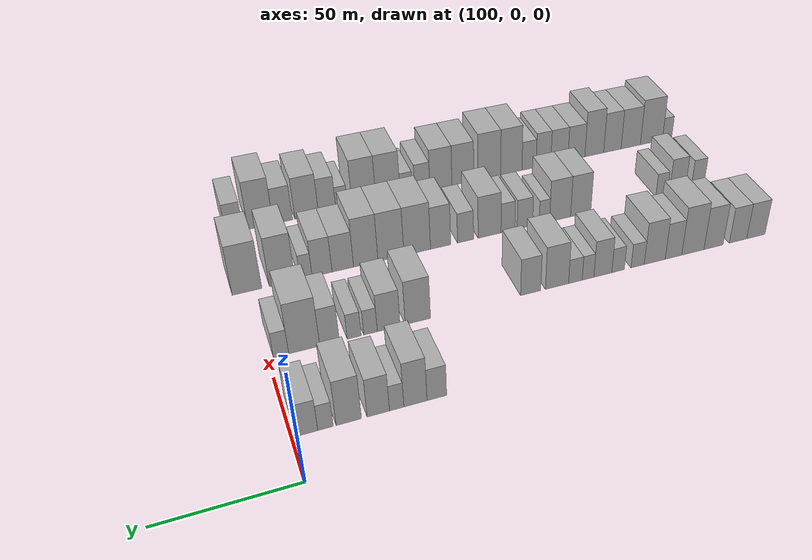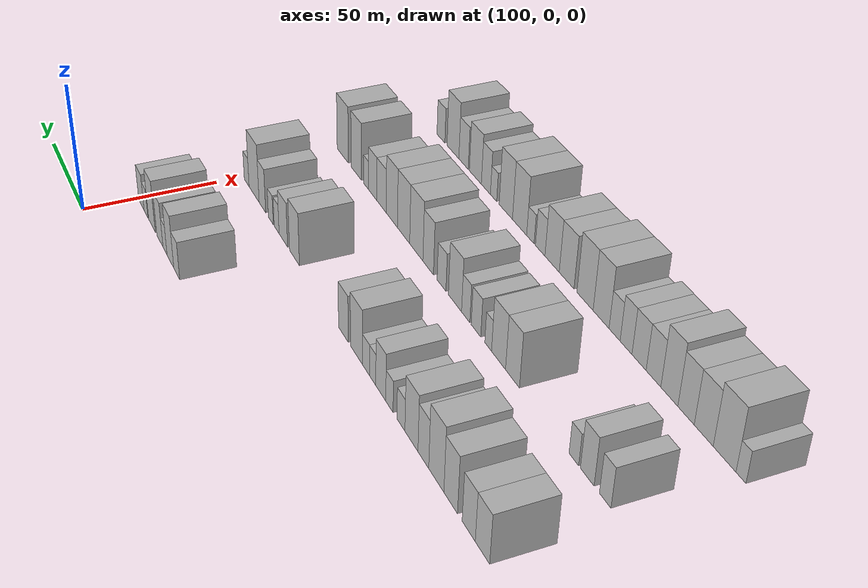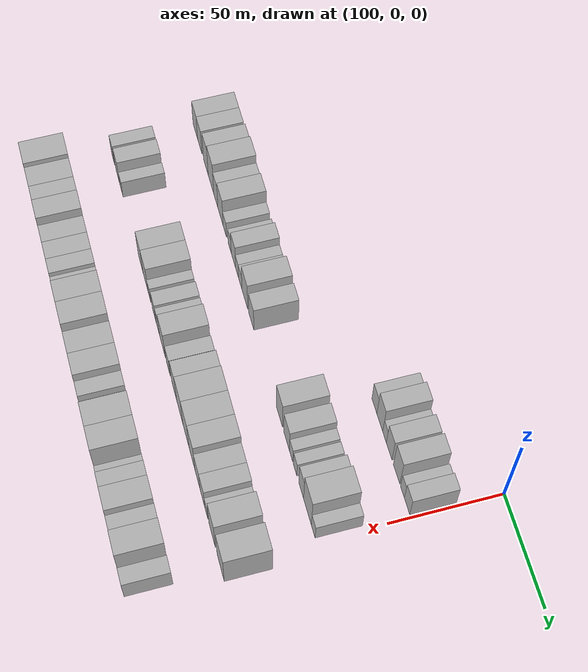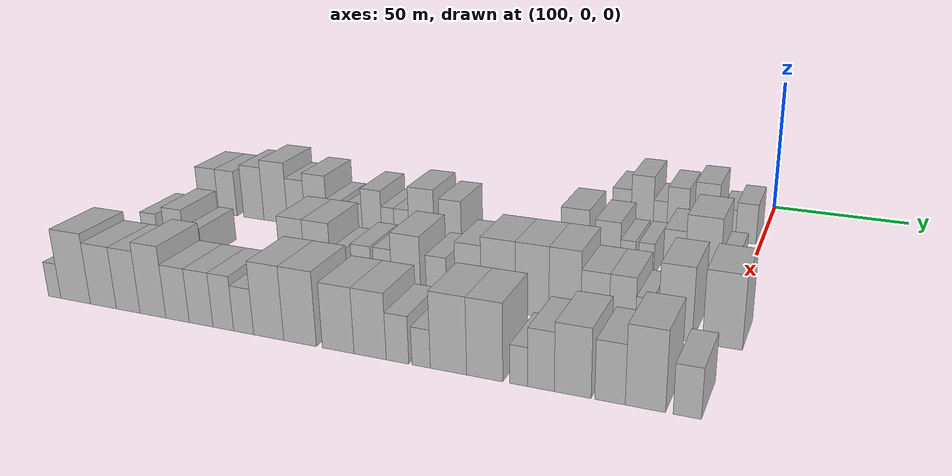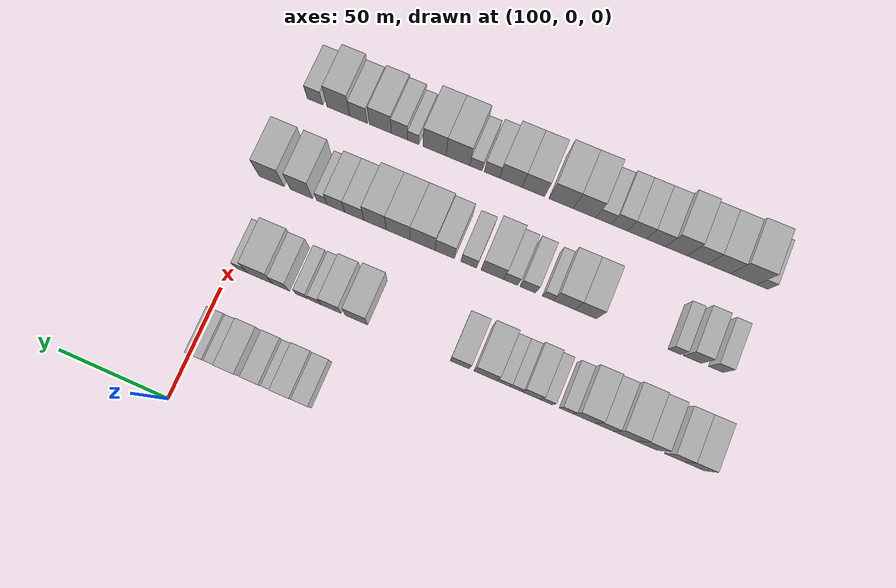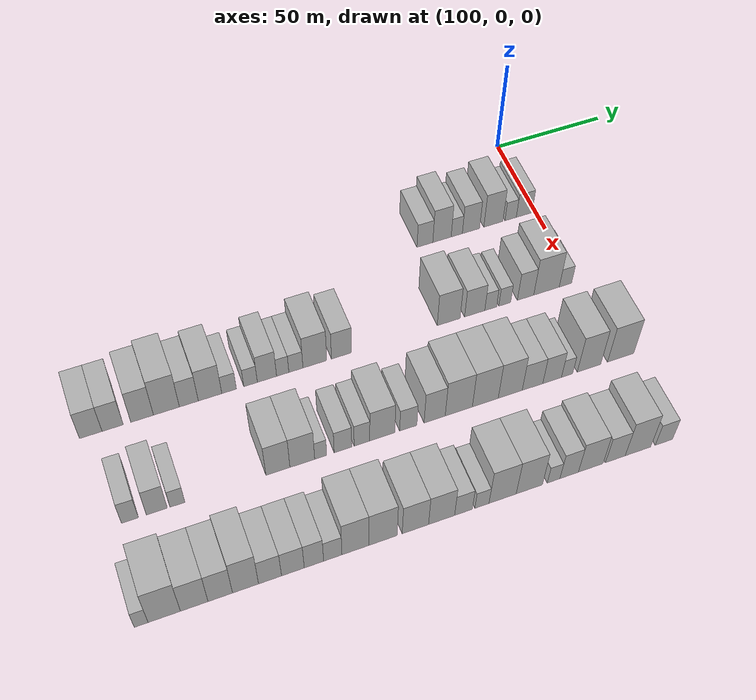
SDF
<sdf version="1.6">
 <world name="default">
  <model name="building_342">
   <static>1</static>
   <pose>130.0000 -51.5141 0 0.000000 0.000000 0.000000</pose>
   <link name="link">
    <pose>0 0 7.50 0 0 0</pose>
    <collision name="collision"><geometry><box><size>20.0000 7.2476 15.0000</size></box></geometry></collision>
    <visual name="visual">
     <cast_shadows>0</cast_shadows>
     <geometry><box><size>20.0000 7.2476 15.0000</size></box></geometry>
     <material>
      <script>
       <uri>model://HANNAS_wall/materials/scripts</uri>
       <uri>model://HANNAS_wall/materials/textures</uri>
       <name>vrc/HANNAS_wall</name>
      </script>
     </material>
    </visual>
   </link>
  </model>
  <model name="building_343">
   <static>1</static>
   <pose>130.0000 -43.6612 0 0.000000 0.000000 0.000000</pose>
   <link name="link">
    <pose>0 0 10.50 0 0 0</pose>
    <collision name="collision"><geometry><box><size>20.0000 8.4582 21.0000</size></box></geometry></collision>
    <visual name="visual">
     <cast_shadows>0</cast_shadows>
     <geometry><box><size>20.0000 8.4582 21.0000</size></box></geometry>
     <material>
      <script>
       <uri>model://HANNAS_wall/materials/scripts</uri>
       <uri>model://HANNAS_wall/materials/textures</uri>
       <name>vrc/HANNAS_wall</name>
      </script>
     </material>
    </visual>
   </link>
  </model>
  <model name="building_344">
   <static>1</static>
   <pose>130.0000 -36.8433 0 0.000000 0.000000 0.000000</pose>
   <link name="link">
    <pose>0 0 6.00 0 0 0</pose>
    <collision name="collision"><geometry><box><size>20.0000 5.1778 12.0000</size></box></geometry></collision>
    <visual name="visual">
     <cast_shadows>0</cast_shadows>
     <geometry><box><size>20.0000 5.1778 12.0000</size></box></geometry>
     <material>
      <script>
       <uri>model://HANNAS_wall/materials/scripts</uri>
       <uri>model://HANNAS_wall/materials/textures</uri>
       <name>vrc/HANNAS_wall</name>
      </script>
     </material>
    </visual>
   </link>
  </model>
  <model name="building_345">
   <static>1</static>
   <pose>130.0000 -30.2554 0 0.000000 0.000000 0.000000</pose>
   <link name="link">
    <pose>0 0 9.00 0 0 0</pose>
    <collision name="collision"><geometry><box><size>20.0000 7.9979 18.0000</size></box></geometry></collision>
    <visual name="visual">
     <cast_shadows>0</cast_shadows>
     <geometry><box><size>20.0000 7.9979 18.0000</size></box></geometry>
     <material>
      <script>
       <uri>model://HANNAS_wall/materials/scripts</uri>
       <uri>model://HANNAS_wall/materials/textures</uri>
       <name>vrc/HANNAS_wall</name>
      </script>
     </material>
    </visual>
   </link>
  </model>
  <model name="building_346">
   <static>1</static>
   <pose>130.0000 -19.7892 0 0.000000 0.000000 0.000000</pose>
   <link name="link">
    <pose>0 0 10.50 0 0 0</pose>
    <collision name="collision"><geometry><box><size>20.0000 8.9345 21.0000</size></box></geometry></collision>
    <visual name="visual">
     <cast_shadows>0</cast_shadows>
     <geometry><box><size>20.0000 8.9345 21.0000</size></box></geometry>
     <material>
      <script>
       <uri>model://HANNAS_wall/materials/scripts</uri>
       <uri>model://HANNAS_wall/materials/textures</uri>
       <name>vrc/HANNAS_wall</name>
      </script>
     </material>
    </visual>
   </link>
  </model>
  <model name="building_347">
   <static>1</static>
   <pose>130.0000 -11.6456 0 0.000000 0.000000 0.000000</pose>
   <link name="link">
    <pose>0 0 6.00 0 0 0</pose>
    <collision name="collision"><geometry><box><size>20.0000 5.3526 12.0000</size></box></geometry></collision>
    <visual name="visual">
     <cast_shadows>0</cast_shadows>
     <geometry><box><size>20.0000 5.3526 12.0000</size></box></geometry>
     <material>
      <script>
       <uri>model://HANNAS_wall/materials/scripts</uri>
       <uri>model://HANNAS_wall/materials/textures</uri>
       <name>vrc/HANNAS_wall</name>
      </script>
     </material>
    </visual>
   </link>
  </model>
  <model name="building_348">
   <static>1</static>
   <pose>130.0000 -5.2496 0 0.000000 0.000000 0.000000</pose>
   <link name="link">
    <pose>0 0 7.50 0 0 0</pose>
    <collision name="collision"><geometry><box><size>20.0000 7.4394 15.0000</size></box></geometry></collision>
    <visual name="visual">
     <cast_shadows>0</cast_shadows>
     <geometry><box><size>20.0000 7.4394 15.0000</size></box></geometry>
     <material>
      <script>
       <uri>model://HANNAS_wall/materials/scripts</uri>
       <uri>model://HANNAS_wall/materials/textures</uri>
       <name>vrc/HANNAS_wall</name>
      </script>
     </material>
    </visual>
   </link>
  </model>
  <model name="building_463">
   <static>1</static>
   <pose>170.0000 -205.8518 0 0.000000 0.000000 0.000000</pose>
   <link name="link">
    <pose>0 0 9.00 0 0 0</pose>
    <collision name="collision"><geometry><box><size>20.0000 8.8298 18.0000</size></box></geometry></collision>
    <visual name="visual">
     <cast_shadows>0</cast_shadows>
     <geometry><box><size>20.0000 8.8298 18.0000</size></box></geometry>
     <material>
      <script>
       <uri>model://HANNAS_wall/materials/scripts</uri>
       <uri>model://HANNAS_wall/materials/textures</uri>
       <name>vrc/HANNAS_wall</name>
      </script>
     </material>
    </visual>
   </link>
  </model>
  <model name="building_464">
   <static>1</static>
   <pose>170.0000 -197.2720 0 0.000000 0.000000 0.000000</pose>
   <link name="link">
    <pose>0 0 9.00 0 0 0</pose>
    <collision name="collision"><geometry><box><size>20.0000 8.3299 18.0000</size></box></geometry></collision>
    <visual name="visual">
     <cast_shadows>0</cast_shadows>
     <geometry><box><size>20.0000 8.3299 18.0000</size></box></geometry>
     <material>
      <script>
       <uri>model://HANNAS_wall/materials/scripts</uri>
       <uri>model://HANNAS_wall/materials/textures</uri>
       <name>vrc/HANNAS_wall</name>
      </script>
     </material>
    </visual>
   </link>
  </model>
  <model name="building_465">
   <static>1</static>
   <pose>170.0000 -185.5988 0 0.000000 0.000000 0.000000</pose>
   <link name="link">
    <pose>0 0 10.50 0 0 0</pose>
    <collision name="collision"><geometry><box><size>20.0000 9.0165 21.0000</size></box></geometry></collision>
    <visual name="visual">
     <cast_shadows>0</cast_shadows>
     <geometry><box><size>20.0000 9.0165 21.0000</size></box></geometry>
     <material>
      <script>
       <uri>model://HANNAS_wall/materials/scripts</uri>
       <uri>model://HANNAS_wall/materials/textures</uri>
       <name>vrc/HANNAS_wall</name>
      </script>
     </material>
    </visual>
   </link>
  </model>
  <model name="building_466">
   <static>1</static>
   <pose>170.0000 -175.8891 0 0.000000 0.000000 0.000000</pose>
   <link name="link">
    <pose>0 0 12.00 0 0 0</pose>
    <collision name="collision"><geometry><box><size>20.0000 10.4028 24.0000</size></box></geometry></collision>
    <visual name="visual">
     <cast_shadows>0</cast_shadows>
     <geometry><box><size>20.0000 10.4028 24.0000</size></box></geometry>
     <material>
      <script>
       <uri>model://HANNAS_wall/materials/scripts</uri>
       <uri>model://HANNAS_wall/materials/textures</uri>
       <name>vrc/HANNAS_wall</name>
      </script>
     </material>
    </visual>
   </link>
  </model>
  <model name="building_467">
   <static>1</static>
   <pose>170.0000 -166.8759 0 0.000000 0.000000 0.000000</pose>
   <link name="link">
    <pose>0 0 9.00 0 0 0</pose>
    <collision name="collision"><geometry><box><size>20.0000 7.6237 18.0000</size></box></geometry></collision>
    <visual name="visual">
     <cast_shadows>0</cast_shadows>
     <geometry><box><size>20.0000 7.6237 18.0000</size></box></geometry>
     <material>
      <script>
       <uri>model://HANNAS_wall/materials/scripts</uri>
       <uri>model://HANNAS_wall/materials/textures</uri>
       <name>vrc/HANNAS_wall</name>
      </script>
     </material>
    </visual>
   </link>
  </model>
  <model name="building_468">
   <static>1</static>
   <pose>170.0000 -158.2862 0 0.000000 0.000000 0.000000</pose>
   <link name="link">
    <pose>0 0 10.50 0 0 0</pose>
    <collision name="collision"><geometry><box><size>20.0000 9.5557 21.0000</size></box></geometry></collision>
    <visual name="visual">
     <cast_shadows>0</cast_shadows>
     <geometry><box><size>20.0000 9.5557 21.0000</size></box></geometry>
     <material>
      <script>
       <uri>model://HANNAS_wall/materials/scripts</uri>
       <uri>model://HANNAS_wall/materials/textures</uri>
       <name>vrc/HANNAS_wall</name>
      </script>
     </material>
    </visual>
   </link>
  </model>
  <model name="building_469">
   <static>1</static>
   <pose>170.0000 -150.5120 0 0.000000 0.000000 0.000000</pose>
   <link name="link">
    <pose>0 0 6.00 0 0 0</pose>
    <collision name="collision"><geometry><box><size>20.0000 5.9926 12.0000</size></box></geometry></collision>
    <visual name="visual">
     <cast_shadows>0</cast_shadows>
     <geometry><box><size>20.0000 5.9926 12.0000</size></box></geometry>
     <material>
      <script>
       <uri>model://HANNAS_wall/materials/scripts</uri>
       <uri>model://HANNAS_wall/materials/textures</uri>
       <name>vrc/HANNAS_wall</name>
      </script>
     </material>
    </visual>
   </link>
  </model>
  <model name="building_470">
   <static>1</static>
   <pose>170.0000 -141.7155 0 0.000000 0.000000 0.000000</pose>
   <link name="link">
    <pose>0 0 6.00 0 0 0</pose>
    <collision name="collision"><geometry><box><size>20.0000 5.6005 12.0000</size></box></geometry></collision>
    <visual name="visual">
     <cast_shadows>0</cast_shadows>
     <geometry><box><size>20.0000 5.6005 12.0000</size></box></geometry>
     <material>
      <script>
       <uri>model://HANNAS_wall/materials/scripts</uri>
       <uri>model://HANNAS_wall/materials/textures</uri>
       <name>vrc/HANNAS_wall</name>
      </script>
     </material>
    </visual>
   </link>
  </model>
  <model name="building_471">
   <static>1</static>
   <pose>170.0000 -134.9388 0 0.000000 0.000000 0.000000</pose>
   <link name="link">
    <pose>0 0 9.00 0 0 0</pose>
    <collision name="collision"><geometry><box><size>20.0000 7.9529 18.0000</size></box></geometry></collision>
    <visual name="visual">
     <cast_shadows>0</cast_shadows>
     <geometry><box><size>20.0000 7.9529 18.0000</size></box></geometry>
     <material>
      <script>
       <uri>model://HANNAS_wall/materials/scripts</uri>
       <uri>model://HANNAS_wall/materials/textures</uri>
       <name>vrc/HANNAS_wall</name>
      </script>
     </material>
    </visual>
   </link>
  </model>
  <model name="building_472">
   <static>1</static>
   <pose>170.0000 -128.4115 0 0.000000 0.000000 0.000000</pose>
   <link name="link">
    <pose>0 0 6.00 0 0 0</pose>
    <collision name="collision"><geometry><box><size>20.0000 5.1018 12.0000</size></box></geometry></collision>
    <visual name="visual">
     <cast_shadows>0</cast_shadows>
     <geometry><box><size>20.0000 5.1018 12.0000</size></box></geometry>
     <material>
      <script>
       <uri>model://HANNAS_wall/materials/scripts</uri>
       <uri>model://HANNAS_wall/materials/textures</uri>
       <name>vrc/HANNAS_wall</name>
      </script>
     </material>
    </visual>
   </link>
  </model>
  <model name="building_473">
   <static>1</static>
   <pose>170.0000 -122.9006 0 0.000000 0.000000 0.000000</pose>
   <link name="link">
    <pose>0 0 6.00 0 0 0</pose>
    <collision name="collision"><geometry><box><size>20.0000 5.9199 12.0000</size></box></geometry></collision>
    <visual name="visual">
     <cast_shadows>0</cast_shadows>
     <geometry><box><size>20.0000 5.9199 12.0000</size></box></geometry>
     <material>
      <script>
       <uri>model://HANNAS_wall/materials/scripts</uri>
       <uri>model://HANNAS_wall/materials/textures</uri>
       <name>vrc/HANNAS_wall</name>
      </script>
     </material>
    </visual>
   </link>
  </model>
  <model name="building_474">
   <static>1</static>
   <pose>170.0000 -114.9412 0 0.000000 0.000000 0.000000</pose>
   <link name="link">
    <pose>0 0 10.50 0 0 0</pose>
    <collision name="collision"><geometry><box><size>20.0000 9.9989 21.0000</size></box></geometry></collision>
    <visual name="visual">
     <cast_shadows>0</cast_shadows>
     <geometry><box><size>20.0000 9.9989 21.0000</size></box></geometry>
     <material>
      <script>
       <uri>model://HANNAS_wall/materials/scripts</uri>
       <uri>model://HANNAS_wall/materials/textures</uri>
       <name>vrc/HANNAS_wall</name>
      </script>
     </material>
    </visual>
   </link>
  </model>
  <model name="building_475">
   <static>1</static>
   <pose>170.0000 -103.6746 0 0.000000 0.000000 0.000000</pose>
   <link name="link">
    <pose>0 0 9.00 0 0 0</pose>
    <collision name="collision"><geometry><box><size>20.0000 8.5343 18.0000</size></box></geometry></collision>
    <visual name="visual">
     <cast_shadows>0</cast_shadows>
     <geometry><box><size>20.0000 8.5343 18.0000</size></box></geometry>
     <material>
      <script>
       <uri>model://HANNAS_wall/materials/scripts</uri>
       <uri>model://HANNAS_wall/materials/textures</uri>
       <name>vrc/HANNAS_wall</name>
      </script>
     </material>
    </visual>
   </link>
  </model>
  <model name="building_476">
   <static>1</static>
   <pose>170.0000 -57.3019 0 0.000000 0.000000 0.000000</pose>
   <link name="link">
    <pose>0 0 10.50 0 0 0</pose>
    <collision name="collision"><geometry><box><size>20.0000 10.0704 21.0000</size></box></geometry></collision>
    <visual name="visual">
     <cast_shadows>0</cast_shadows>
     <geometry><box><size>20.0000 10.0704 21.0000</size></box></geometry>
     <material>
      <script>
       <uri>model://HANNAS_wall/materials/scripts</uri>
       <uri>model://HANNAS_wall/materials/textures</uri>
       <name>vrc/HANNAS_wall</name>
      </script>
     </material>
    </visual>
   </link>
  </model>
  <model name="building_477">
   <static>1</static>
   <pose>170.0000 -45.7867 0 0.000000 0.000000 0.000000</pose>
   <link name="link">
    <pose>0 0 9.00 0 0 0</pose>
    <collision name="collision"><geometry><box><size>20.0000 8.9599 18.0000</size></box></geometry></collision>
    <visual name="visual">
     <cast_shadows>0</cast_shadows>
     <geometry><box><size>20.0000 8.9599 18.0000</size></box></geometry>
     <material>
      <script>
       <uri>model://HANNAS_wall/materials/scripts</uri>
       <uri>model://HANNAS_wall/materials/textures</uri>
       <name>vrc/HANNAS_wall</name>
      </script>
     </material>
    </visual>
   </link>
  </model>
  <model name="building_478">
   <static>1</static>
   <pose>170.0000 -38.6701 0 0.000000 0.000000 0.000000</pose>
   <link name="link">
    <pose>0 0 6.00 0 0 0</pose>
    <collision name="collision"><geometry><box><size>20.0000 5.2733 12.0000</size></box></geometry></collision>
    <visual name="visual">
     <cast_shadows>0</cast_shadows>
     <geometry><box><size>20.0000 5.2733 12.0000</size></box></geometry>
     <material>
      <script>
       <uri>model://HANNAS_wall/materials/scripts</uri>
       <uri>model://HANNAS_wall/materials/textures</uri>
       <name>vrc/HANNAS_wall</name>
      </script>
     </material>
    </visual>
   </link>
  </model>
  <model name="building_479">
   <static>1</static>
   <pose>170.0000 -32.3515 0 0.000000 0.000000 0.000000</pose>
   <link name="link">
    <pose>0 0 6.00 0 0 0</pose>
    <collision name="collision"><geometry><box><size>20.0000 5.3639 12.0000</size></box></geometry></collision>
    <visual name="visual">
     <cast_shadows>0</cast_shadows>
     <geometry><box><size>20.0000 5.3639 12.0000</size></box></geometry>
     <material>
      <script>
       <uri>model://HANNAS_wall/materials/scripts</uri>
       <uri>model://HANNAS_wall/materials/textures</uri>
       <name>vrc/HANNAS_wall</name>
      </script>
     </material>
    </visual>
   </link>
  </model>
  <model name="building_480">
   <static>1</static>
   <pose>170.0000 -22.9634 0 0.000000 0.000000 0.000000</pose>
   <link name="link">
    <pose>0 0 9.00 0 0 0</pose>
    <collision name="collision"><geometry><box><size>20.0000 7.4122 18.0000</size></box></geometry></collision>
    <visual name="visual">
     <cast_shadows>0</cast_shadows>
     <geometry><box><size>20.0000 7.4122 18.0000</size></box></geometry>
     <material>
      <script>
       <uri>model://HANNAS_wall/materials/scripts</uri>
       <uri>model://HANNAS_wall/materials/textures</uri>
       <name>vrc/HANNAS_wall</name>
      </script>
     </material>
    </visual>
   </link>
  </model>
  <model name="building_481">
   <static>1</static>
   <pose>170.0000 -13.4346 0 0.000000 0.000000 0.000000</pose>
   <link name="link">
    <pose>0 0 12.00 0 0 0</pose>
    <collision name="collision"><geometry><box><size>20.0000 11.6454 24.0000</size></box></geometry></collision>
    <visual name="visual">
     <cast_shadows>0</cast_shadows>
     <geometry><box><size>20.0000 11.6454 24.0000</size></box></geometry>
     <material>
      <script>
       <uri>model://HANNAS_wall/materials/scripts</uri>
       <uri>model://HANNAS_wall/materials/textures</uri>
       <name>vrc/HANNAS_wall</name>
      </script>
     </material>
    </visual>
   </link>
  </model>
  <model name="building_482">
   <static>1</static>
   <pose>170.0000 -4.7738 0 0.000000 0.000000 0.000000</pose>
   <link name="link">
    <pose>0 0 6.00 0 0 0</pose>
    <collision name="collision"><geometry><box><size>20.0000 5.6762 12.0000</size></box></geometry></collision>
    <visual name="visual">
     <cast_shadows>0</cast_shadows>
     <geometry><box><size>20.0000 5.6762 12.0000</size></box></geometry>
     <material>
      <script>
       <uri>model://HANNAS_wall/materials/scripts</uri>
       <uri>model://HANNAS_wall/materials/textures</uri>
       <name>vrc/HANNAS_wall</name>
      </script>
     </material>
    </visual>
   </link>
  </model>
  <model name="building_605">
   <static>1</static>
   <pose>210.0000 -200.7367 0 0.000000 0.000000 0.000000</pose>
   <link name="link">
    <pose>0 0 7.50 0 0 0</pose>
    <collision name="collision"><geometry><box><size>20.0000 6.4362 15.0000</size></box></geometry></collision>
    <visual name="visual">
     <cast_shadows>0</cast_shadows>
     <geometry><box><size>20.0000 6.4362 15.0000</size></box></geometry>
     <material>
      <script>
       <uri>model://HANNAS_wall/materials/scripts</uri>
       <uri>model://HANNAS_wall/materials/textures</uri>
       <name>vrc/HANNAS_wall</name>
      </script>
     </material>
    </visual>
   </link>
  </model>
  <model name="building_606">
   <static>1</static>
   <pose>210.0000 -190.5467 0 0.000000 0.000000 0.000000</pose>
   <link name="link">
    <pose>0 0 9.00 0 0 0</pose>
    <collision name="collision"><geometry><box><size>20.0000 7.9437 18.0000</size></box></geometry></collision>
    <visual name="visual">
     <cast_shadows>0</cast_shadows>
     <geometry><box><size>20.0000 7.9437 18.0000</size></box></geometry>
     <material>
      <script>
       <uri>model://HANNAS_wall/materials/scripts</uri>
       <uri>model://HANNAS_wall/materials/textures</uri>
       <name>vrc/HANNAS_wall</name>
      </script>
     </material>
    </visual>
   </link>
  </model>
  <model name="building_607">
   <static>1</static>
   <pose>210.0000 -182.7085 0 0.000000 0.000000 0.000000</pose>
   <link name="link">
    <pose>0 0 6.00 0 0 0</pose>
    <collision name="collision"><geometry><box><size>20.0000 5.7328 12.0000</size></box></geometry></collision>
    <visual name="visual">
     <cast_shadows>0</cast_shadows>
     <geometry><box><size>20.0000 5.7328 12.0000</size></box></geometry>
     <material>
      <script>
       <uri>model://HANNAS_wall/materials/scripts</uri>
       <uri>model://HANNAS_wall/materials/textures</uri>
       <name>vrc/HANNAS_wall</name>
      </script>
     </material>
    </visual>
   </link>
  </model>
  <model name="building_608">
   <static>1</static>
   <pose>210.0000 -143.5787 0 0.000000 0.000000 0.000000</pose>
   <link name="link">
    <pose>0 0 10.50 0 0 0</pose>
    <collision name="collision"><geometry><box><size>20.0000 9.5090 21.0000</size></box></geometry></collision>
    <visual name="visual">
     <cast_shadows>0</cast_shadows>
     <geometry><box><size>20.0000 9.5090 21.0000</size></box></geometry>
     <material>
      <script>
       <uri>model://HANNAS_wall/materials/scripts</uri>
       <uri>model://HANNAS_wall/materials/textures</uri>
       <name>vrc/HANNAS_wall</name>
      </script>
     </material>
    </visual>
   </link>
  </model>
  <model name="building_609">
   <static>1</static>
   <pose>210.0000 -133.8915 0 0.000000 0.000000 0.000000</pose>
   <link name="link">
    <pose>0 0 10.50 0 0 0</pose>
    <collision name="collision"><geometry><box><size>20.0000 9.8653 21.0000</size></box></geometry></collision>
    <visual name="visual">
     <cast_shadows>0</cast_shadows>
     <geometry><box><size>20.0000 9.8653 21.0000</size></box></geometry>
     <material>
      <script>
       <uri>model://HANNAS_wall/materials/scripts</uri>
       <uri>model://HANNAS_wall/materials/textures</uri>
       <name>vrc/HANNAS_wall</name>
      </script>
     </material>
    </visual>
   </link>
  </model>
  <model name="building_610">
   <static>1</static>
   <pose>210.0000 -126.5502 0 0.000000 0.000000 0.000000</pose>
   <link name="link">
    <pose>0 0 6.00 0 0 0</pose>
    <collision name="collision"><geometry><box><size>20.0000 4.8173 12.0000</size></box></geometry></collision>
    <visual name="visual">
     <cast_shadows>0</cast_shadows>
     <geometry><box><size>20.0000 4.8173 12.0000</size></box></geometry>
     <material>
      <script>
       <uri>model://HANNAS_wall/materials/scripts</uri>
       <uri>model://HANNAS_wall/materials/textures</uri>
       <name>vrc/HANNAS_wall</name>
      </script>
     </material>
    </visual>
   </link>
  </model>
  <model name="building_611">
   <static>1</static>
   <pose>210.0000 -117.5949 0 0.000000 0.000000 0.000000</pose>
   <link name="link">
    <pose>0 0 7.50 0 0 0</pose>
    <collision name="collision"><geometry><box><size>20.0000 7.0931 15.0000</size></box></geometry></collision>
    <visual name="visual">
     <cast_shadows>0</cast_shadows>
     <geometry><box><size>20.0000 7.0931 15.0000</size></box></geometry>
     <material>
      <script>
       <uri>model://HANNAS_wall/materials/scripts</uri>
       <uri>model://HANNAS_wall/materials/textures</uri>
       <name>vrc/HANNAS_wall</name>
      </script>
     </material>
    </visual>
   </link>
  </model>
  <model name="building_612">
   <static>1</static>
   <pose>210.0000 -109.8763 0 0.000000 0.000000 0.000000</pose>
   <link name="link">
    <pose>0 0 7.50 0 0 0</pose>
    <collision name="collision"><geometry><box><size>20.0000 6.3442 15.0000</size></box></geometry></collision>
    <visual name="visual">
     <cast_shadows>0</cast_shadows>
     <geometry><box><size>20.0000 6.3442 15.0000</size></box></geometry>
     <material>
      <script>
       <uri>model://HANNAS_wall/materials/scripts</uri>
       <uri>model://HANNAS_wall/materials/textures</uri>
       <name>vrc/HANNAS_wall</name>
      </script>
     </material>
    </visual>
   </link>
  </model>
  <model name="building_613">
   <static>1</static>
   <pose>210.0000 -101.5706 0 0.000000 0.000000 0.000000</pose>
   <link name="link">
    <pose>0 0 10.50 0 0 0</pose>
    <collision name="collision"><geometry><box><size>20.0000 10.2671 21.0000</size></box></geometry></collision>
    <visual name="visual">
     <cast_shadows>0</cast_shadows>
     <geometry><box><size>20.0000 10.2671 21.0000</size></box></geometry>
     <material>
      <script>
       <uri>model://HANNAS_wall/materials/scripts</uri>
       <uri>model://HANNAS_wall/materials/textures</uri>
       <name>vrc/HANNAS_wall</name>
      </script>
     </material>
    </visual>
   </link>
  </model>
  <model name="building_614">
   <static>1</static>
   <pose>210.0000 -90.8751 0 0.000000 0.000000 0.000000</pose>
   <link name="link">
    <pose>0 0 7.50 0 0 0</pose>
    <collision name="collision"><geometry><box><size>20.0000 7.1238 15.0000</size></box></geometry></collision>
    <visual name="visual">
     <cast_shadows>0</cast_shadows>
     <geometry><box><size>20.0000 7.1238 15.0000</size></box></geometry>
     <material>
      <script>
       <uri>model://HANNAS_wall/materials/scripts</uri>
       <uri>model://HANNAS_wall/materials/textures</uri>
       <name>vrc/HANNAS_wall</name>
      </script>
     </material>
    </visual>
   </link>
  </model>
  <model name="building_615">
   <static>1</static>
   <pose>210.0000 -79.9090 0 0.000000 0.000000 0.000000</pose>
   <link name="link">
    <pose>0 0 10.50 0 0 0</pose>
    <collision name="collision"><geometry><box><size>20.0000 8.8086 21.0000</size></box></geometry></collision>
    <visual name="visual">
     <cast_shadows>0</cast_shadows>
     <geometry><box><size>20.0000 8.8086 21.0000</size></box></geometry>
     <material>
      <script>
       <uri>model://HANNAS_wall/materials/scripts</uri>
       <uri>model://HANNAS_wall/materials/textures</uri>
       <name>vrc/HANNAS_wall</name>
      </script>
     </material>
    </visual>
   </link>
  </model>
  <model name="building_616">
   <static>1</static>
   <pose>210.0000 -69.7845 0 0.000000 0.000000 0.000000</pose>
   <link name="link">
    <pose>0 0 12.00 0 0 0</pose>
    <collision name="collision"><geometry><box><size>20.0000 11.4404 24.0000</size></box></geometry></collision>
    <visual name="visual">
     <cast_shadows>0</cast_shadows>
     <geometry><box><size>20.0000 11.4404 24.0000</size></box></geometry>
     <material>
      <script>
       <uri>model://HANNAS_wall/materials/scripts</uri>
       <uri>model://HANNAS_wall/materials/textures</uri>
       <name>vrc/HANNAS_wall</name>
      </script>
     </material>
    </visual>
   </link>
  </model>
  <model name="building_617">
   <static>1</static>
   <pose>210.0000 -58.5659 0 0.000000 0.000000 0.000000</pose>
   <link name="link">
    <pose>0 0 12.00 0 0 0</pose>
    <collision name="collision"><geometry><box><size>20.0000 10.9968 24.0000</size></box></geometry></collision>
    <visual name="visual">
     <cast_shadows>0</cast_shadows>
     <geometry><box><size>20.0000 10.9968 24.0000</size></box></geometry>
     <material>
      <script>
       <uri>model://HANNAS_wall/materials/scripts</uri>
       <uri>model://HANNAS_wall/materials/textures</uri>
       <name>vrc/HANNAS_wall</name>
      </script>
     </material>
    </visual>
   </link>
  </model>
  <model name="building_618">
   <static>1</static>
   <pose>210.0000 -47.9330 0 0.000000 0.000000 0.000000</pose>
   <link name="link">
    <pose>0 0 12.00 0 0 0</pose>
    <collision name="collision"><geometry><box><size>20.0000 10.2688 24.0000</size></box></geometry></collision>
    <visual name="visual">
     <cast_shadows>0</cast_shadows>
     <geometry><box><size>20.0000 10.2688 24.0000</size></box></geometry>
     <material>
      <script>
       <uri>model://HANNAS_wall/materials/scripts</uri>
       <uri>model://HANNAS_wall/materials/textures</uri>
       <name>vrc/HANNAS_wall</name>
      </script>
     </material>
    </visual>
   </link>
  </model>
  <model name="building_619">
   <static>1</static>
   <pose>210.0000 -38.3495 0 0.000000 0.000000 0.000000</pose>
   <link name="link">
    <pose>0 0 9.00 0 0 0</pose>
    <collision name="collision"><geometry><box><size>20.0000 8.8983 18.0000</size></box></geometry></collision>
    <visual name="visual">
     <cast_shadows>0</cast_shadows>
     <geometry><box><size>20.0000 8.8983 18.0000</size></box></geometry>
     <material>
      <script>
       <uri>model://HANNAS_wall/materials/scripts</uri>
       <uri>model://HANNAS_wall/materials/textures</uri>
       <name>vrc/HANNAS_wall</name>
      </script>
     </material>
    </visual>
   </link>
  </model>
  <model name="building_620">
   <static>1</static>
   <pose>210.0000 -29.8252 0 0.000000 0.000000 0.000000</pose>
   <link name="link">
    <pose>0 0 9.00 0 0 0</pose>
    <collision name="collision"><geometry><box><size>20.0000 8.1503 18.0000</size></box></geometry></collision>
    <visual name="visual">
     <cast_shadows>0</cast_shadows>
     <geometry><box><size>20.0000 8.1503 18.0000</size></box></geometry>
     <material>
      <script>
       <uri>model://HANNAS_wall/materials/scripts</uri>
       <uri>model://HANNAS_wall/materials/textures</uri>
       <name>vrc/HANNAS_wall</name>
      </script>
     </material>
    </visual>
   </link>
  </model>
  <model name="building_621">
   <static>1</static>
   <pose>210.0000 -23.3096 0 0.000000 0.000000 0.000000</pose>
   <link name="link">
    <pose>0 0 6.00 0 0 0</pose>
    <collision name="collision"><geometry><box><size>20.0000 4.8808 12.0000</size></box></geometry></collision>
    <visual name="visual">
     <cast_shadows>0</cast_shadows>
     <geometry><box><size>20.0000 4.8808 12.0000</size></box></geometry>
     <material>
      <script>
       <uri>model://HANNAS_wall/materials/scripts</uri>
       <uri>model://HANNAS_wall/materials/textures</uri>
       <name>vrc/HANNAS_wall</name>
      </script>
     </material>
    </visual>
   </link>
  </model>
  <model name="building_622">
   <static>1</static>
   <pose>210.0000 -13.7022 0 0.000000 0.000000 0.000000</pose>
   <link name="link">
    <pose>0 0 12.00 0 0 0</pose>
    <collision name="collision"><geometry><box><size>20.0000 10.3340 24.0000</size></box></geometry></collision>
    <visual name="visual">
     <cast_shadows>0</cast_shadows>
     <geometry><box><size>20.0000 10.3340 24.0000</size></box></geometry>
     <material>
      <script>
       <uri>model://HANNAS_wall/materials/scripts</uri>
       <uri>model://HANNAS_wall/materials/textures</uri>
       <name>vrc/HANNAS_wall</name>
      </script>
     </material>
    </visual>
   </link>
  </model>
  <model name="building_623">
   <static>1</static>
   <pose>210.0000 0.3251 0 0.000000 0.000000 0.000000</pose>
   <link name="link">
    <pose>0 0 12.00 0 0 0</pose>
    <collision name="collision"><geometry><box><size>20.0000 11.7206 24.0000</size></box></geometry></collision>
    <visual name="visual">
     <cast_shadows>0</cast_shadows>
     <geometry><box><size>20.0000 11.7206 24.0000</size></box></geometry>
     <material>
      <script>
       <uri>model://HANNAS_wall/materials/scripts</uri>
       <uri>model://HANNAS_wall/materials/textures</uri>
       <name>vrc/HANNAS_wall</name>
      </script>
     </material>
    </visual>
   </link>
  </model>
  <model name="building_735">
   <static>1</static>
   <pose>250.0000 -207.0255 0 0.000000 0.000000 0.000000</pose>
   <link name="link">
    <pose>0 0 6.00 0 0 0</pose>
    <collision name="collision"><geometry><box><size>20.0000 4.9684 12.0000</size></box></geometry></collision>
    <visual name="visual">
     <cast_shadows>0</cast_shadows>
     <geometry><box><size>20.0000 4.9684 12.0000</size></box></geometry>
     <material>
      <script>
       <uri>model://HANNAS_wall/materials/scripts</uri>
       <uri>model://HANNAS_wall/materials/textures</uri>
       <name>vrc/HANNAS_wall</name>
      </script>
     </material>
    </visual>
   </link>
  </model>
  <model name="building_736">
   <static>1</static>
   <pose>250.0000 -198.6995 0 0.000000 0.000000 0.000000</pose>
   <link name="link">
    <pose>0 0 12.00 0 0 0</pose>
    <collision name="collision"><geometry><box><size>20.0000 11.6835 24.0000</size></box></geometry></collision>
    <visual name="visual">
     <cast_shadows>0</cast_shadows>
     <geometry><box><size>20.0000 11.6835 24.0000</size></box></geometry>
     <material>
      <script>
       <uri>model://HANNAS_wall/materials/scripts</uri>
       <uri>model://HANNAS_wall/materials/textures</uri>
       <name>vrc/HANNAS_wall</name>
      </script>
     </material>
    </visual>
   </link>
  </model>
  <model name="building_737">
   <static>1</static>
   <pose>250.0000 -187.8046 0 0.000000 0.000000 0.000000</pose>
   <link name="link">
    <pose>0 0 10.50 0 0 0</pose>
    <collision name="collision"><geometry><box><size>20.0000 10.1063 21.0000</size></box></geometry></collision>
    <visual name="visual">
     <cast_shadows>0</cast_shadows>
     <geometry><box><size>20.0000 10.1063 21.0000</size></box></geometry>
     <material>
      <script>
       <uri>model://HANNAS_wall/materials/scripts</uri>
       <uri>model://HANNAS_wall/materials/textures</uri>
       <name>vrc/HANNAS_wall</name>
      </script>
     </material>
    </visual>
   </link>
  </model>
  <model name="building_738">
   <static>1</static>
   <pose>250.0000 -178.2363 0 0.000000 0.000000 0.000000</pose>
   <link name="link">
    <pose>0 0 10.50 0 0 0</pose>
    <collision name="collision"><geometry><box><size>20.0000 9.0302 21.0000</size></box></geometry></collision>
    <visual name="visual">
     <cast_shadows>0</cast_shadows>
     <geometry><box><size>20.0000 9.0302 21.0000</size></box></geometry>
     <material>
      <script>
       <uri>model://HANNAS_wall/materials/scripts</uri>
       <uri>model://HANNAS_wall/materials/textures</uri>
       <name>vrc/HANNAS_wall</name>
      </script>
     </material>
    </visual>
   </link>
  </model>
  <model name="building_739">
   <static>1</static>
   <pose>250.0000 -168.8832 0 0.000000 0.000000 0.000000</pose>
   <link name="link">
    <pose>0 0 12.00 0 0 0</pose>
    <collision name="collision"><geometry><box><size>20.0000 9.6761 24.0000</size></box></geometry></collision>
    <visual name="visual">
     <cast_shadows>0</cast_shadows>
     <geometry><box><size>20.0000 9.6761 24.0000</size></box></geometry>
     <material>
      <script>
       <uri>model://HANNAS_wall/materials/scripts</uri>
       <uri>model://HANNAS_wall/materials/textures</uri>
       <name>vrc/HANNAS_wall</name>
      </script>
     </material>
    </visual>
   </link>
  </model>
  <model name="building_740">
   <static>1</static>
   <pose>250.0000 -159.7382 0 0.000000 0.000000 0.000000</pose>
   <link name="link">
    <pose>0 0 9.00 0 0 0</pose>
    <collision name="collision"><geometry><box><size>20.0000 8.6139 18.0000</size></box></geometry></collision>
    <visual name="visual">
     <cast_shadows>0</cast_shadows>
     <geometry><box><size>20.0000 8.6139 18.0000</size></box></geometry>
     <material>
      <script>
       <uri>model://HANNAS_wall/materials/scripts</uri>
       <uri>model://HANNAS_wall/materials/textures</uri>
       <name>vrc/HANNAS_wall</name>
      </script>
     </material>
    </visual>
   </link>
  </model>
  <model name="building_741">
   <static>1</static>
   <pose>250.0000 -151.1400 0 0.000000 0.000000 0.000000</pose>
   <link name="link">
    <pose>0 0 9.00 0 0 0</pose>
    <collision name="collision"><geometry><box><size>20.0000 8.5825 18.0000</size></box></geometry></collision>
    <visual name="visual">
     <cast_shadows>0</cast_shadows>
     <geometry><box><size>20.0000 8.5825 18.0000</size></box></geometry>
     <material>
      <script>
       <uri>model://HANNAS_wall/materials/scripts</uri>
       <uri>model://HANNAS_wall/materials/textures</uri>
       <name>vrc/HANNAS_wall</name>
      </script>
     </material>
    </visual>
   </link>
  </model>
  <model name="building_742">
   <static>1</static>
   <pose>250.0000 -143.1700 0 0.000000 0.000000 0.000000</pose>
   <link name="link">
    <pose>0 0 9.00 0 0 0</pose>
    <collision name="collision"><geometry><box><size>20.0000 7.3574 18.0000</size></box></geometry></collision>
    <visual name="visual">
     <cast_shadows>0</cast_shadows>
     <geometry><box><size>20.0000 7.3574 18.0000</size></box></geometry>
     <material>
      <script>
       <uri>model://HANNAS_wall/materials/scripts</uri>
       <uri>model://HANNAS_wall/materials/textures</uri>
       <name>vrc/HANNAS_wall</name>
      </script>
     </material>
    </visual>
   </link>
  </model>
  <model name="building_743">
   <static>1</static>
   <pose>250.0000 -135.9929 0 0.000000 0.000000 0.000000</pose>
   <link name="link">
    <pose>0 0 7.50 0 0 0</pose>
    <collision name="collision"><geometry><box><size>20.0000 6.9968 15.0000</size></box></geometry></collision>
    <visual name="visual">
     <cast_shadows>0</cast_shadows>
     <geometry><box><size>20.0000 6.9968 15.0000</size></box></geometry>
     <material>
      <script>
       <uri>model://HANNAS_wall/materials/scripts</uri>
       <uri>model://HANNAS_wall/materials/textures</uri>
       <name>vrc/HANNAS_wall</name>
      </script>
     </material>
    </visual>
   </link>
  </model>
  <model name="building_744">
   <static>1</static>
   <pose>250.0000 -127.2953 0 0.000000 0.000000 0.000000</pose>
   <link name="link">
    <pose>0 0 12.00 0 0 0</pose>
    <collision name="collision"><geometry><box><size>20.0000 10.3985 24.0000</size></box></geometry></collision>
    <visual name="visual">
     <cast_shadows>0</cast_shadows>
     <geometry><box><size>20.0000 10.3985 24.0000</size></box></geometry>
     <material>
      <script>
       <uri>model://HANNAS_wall/materials/scripts</uri>
       <uri>model://HANNAS_wall/materials/textures</uri>
       <name>vrc/HANNAS_wall</name>
      </script>
     </material>
    </visual>
   </link>
  </model>
  <model name="building_745">
   <static>1</static>
   <pose>250.0000 -116.6116 0 0.000000 0.000000 0.000000</pose>
   <link name="link">
    <pose>0 0 12.00 0 0 0</pose>
    <collision name="collision"><geometry><box><size>20.0000 10.9687 24.0000</size></box></geometry></collision>
    <visual name="visual">
     <cast_shadows>0</cast_shadows>
     <geometry><box><size>20.0000 10.9687 24.0000</size></box></geometry>
     <material>
      <script>
       <uri>model://HANNAS_wall/materials/scripts</uri>
       <uri>model://HANNAS_wall/materials/textures</uri>
       <name>vrc/HANNAS_wall</name>
      </script>
     </material>
    </visual>
   </link>
  </model>
  <model name="building_746">
   <static>1</static>
   <pose>250.0000 -103.9392 0 0.000000 0.000000 0.000000</pose>
   <link name="link">
    <pose>0 0 10.50 0 0 0</pose>
    <collision name="collision"><geometry><box><size>20.0000 10.3762 21.0000</size></box></geometry></collision>
    <visual name="visual">
     <cast_shadows>0</cast_shadows>
     <geometry><box><size>20.0000 10.3762 21.0000</size></box></geometry>
     <material>
      <script>
       <uri>model://HANNAS_wall/materials/scripts</uri>
       <uri>model://HANNAS_wall/materials/textures</uri>
       <name>vrc/HANNAS_wall</name>
      </script>
     </material>
    </visual>
   </link>
  </model>
  <model name="building_747">
   <static>1</static>
   <pose>250.0000 -93.5758 0 0.000000 0.000000 0.000000</pose>
   <link name="link">
    <pose>0 0 10.50 0 0 0</pose>
    <collision name="collision"><geometry><box><size>20.0000 10.3505 21.0000</size></box></geometry></collision>
    <visual name="visual">
     <cast_shadows>0</cast_shadows>
     <geometry><box><size>20.0000 10.3505 21.0000</size></box></geometry>
     <material>
      <script>
       <uri>model://HANNAS_wall/materials/scripts</uri>
       <uri>model://HANNAS_wall/materials/textures</uri>
       <name>vrc/HANNAS_wall</name>
      </script>
     </material>
    </visual>
   </link>
  </model>
  <model name="building_748">
   <static>1</static>
   <pose>250.0000 -84.8516 0 0.000000 0.000000 0.000000</pose>
   <link name="link">
    <pose>0 0 7.50 0 0 0</pose>
    <collision name="collision"><geometry><box><size>20.0000 7.0980 15.0000</size></box></geometry></collision>
    <visual name="visual">
     <cast_shadows>0</cast_shadows>
     <geometry><box><size>20.0000 7.0980 15.0000</size></box></geometry>
     <material>
      <script>
       <uri>model://HANNAS_wall/materials/scripts</uri>
       <uri>model://HANNAS_wall/materials/textures</uri>
       <name>vrc/HANNAS_wall</name>
      </script>
     </material>
    </visual>
   </link>
  </model>
  <model name="building_749">
   <static>1</static>
   <pose>250.0000 -77.4580 0 0.000000 0.000000 0.000000</pose>
   <link name="link">
    <pose>0 0 6.00 0 0 0</pose>
    <collision name="collision"><geometry><box><size>20.0000 5.6893 12.0000</size></box></geometry></collision>
    <visual name="visual">
     <cast_shadows>0</cast_shadows>
     <geometry><box><size>20.0000 5.6893 12.0000</size></box></geometry>
     <material>
      <script>
       <uri>model://HANNAS_wall/materials/scripts</uri>
       <uri>model://HANNAS_wall/materials/textures</uri>
       <name>vrc/HANNAS_wall</name>
      </script>
     </material>
    </visual>
   </link>
  </model>
  <model name="building_750">
   <static>1</static>
   <pose>250.0000 -69.0878 0 0.000000 0.000000 0.000000</pose>
   <link name="link">
    <pose>0 0 12.00 0 0 0</pose>
    <collision name="collision"><geometry><box><size>20.0000 11.0510 24.0000</size></box></geometry></collision>
    <visual name="visual">
     <cast_shadows>0</cast_shadows>
     <geometry><box><size>20.0000 11.0510 24.0000</size></box></geometry>
     <material>
      <script>
       <uri>model://HANNAS_wall/materials/scripts</uri>
       <uri>model://HANNAS_wall/materials/textures</uri>
       <name>vrc/HANNAS_wall</name>
      </script>
     </material>
    </visual>
   </link>
  </model>
  <model name="building_751">
   <static>1</static>
   <pose>250.0000 -58.1897 0 0.000000 0.000000 0.000000</pose>
   <link name="link">
    <pose>0 0 12.00 0 0 0</pose>
    <collision name="collision"><geometry><box><size>20.0000 10.7452 24.0000</size></box></geometry></collision>
    <visual name="visual">
     <cast_shadows>0</cast_shadows>
     <geometry><box><size>20.0000 10.7452 24.0000</size></box></geometry>
     <material>
      <script>
       <uri>model://HANNAS_wall/materials/scripts</uri>
       <uri>model://HANNAS_wall/materials/textures</uri>
       <name>vrc/HANNAS_wall</name>
      </script>
     </material>
    </visual>
   </link>
  </model>
  <model name="building_752">
   <static>1</static>
   <pose>250.0000 -48.2154 0 0.000000 0.000000 0.000000</pose>
   <link name="link">
    <pose>0 0 6.00 0 0 0</pose>
    <collision name="collision"><geometry><box><size>20.0000 5.2034 12.0000</size></box></geometry></collision>
    <visual name="visual">
     <cast_shadows>0</cast_shadows>
     <geometry><box><size>20.0000 5.2034 12.0000</size></box></geometry>
     <material>
      <script>
       <uri>model://HANNAS_wall/materials/scripts</uri>
       <uri>model://HANNAS_wall/materials/textures</uri>
       <name>vrc/HANNAS_wall</name>
      </script>
     </material>
    </visual>
   </link>
  </model>
  <model name="building_753">
   <static>1</static>
   <pose>250.0000 -41.7751 0 0.000000 0.000000 0.000000</pose>
   <link name="link">
    <pose>0 0 9.00 0 0 0</pose>
    <collision name="collision"><geometry><box><size>20.0000 7.6773 18.0000</size></box></geometry></collision>
    <visual name="visual">
     <cast_shadows>0</cast_shadows>
     <geometry><box><size>20.0000 7.6773 18.0000</size></box></geometry>
     <material>
      <script>
       <uri>model://HANNAS_wall/materials/scripts</uri>
       <uri>model://HANNAS_wall/materials/textures</uri>
       <name>vrc/HANNAS_wall</name>
      </script>
     </material>
    </visual>
   </link>
  </model>
  <model name="building_754">
   <static>1</static>
   <pose>250.0000 -32.7681 0 0.000000 0.000000 0.000000</pose>
   <link name="link">
    <pose>0 0 10.50 0 0 0</pose>
    <collision name="collision"><geometry><box><size>20.0000 10.3367 21.0000</size></box></geometry></collision>
    <visual name="visual">
     <cast_shadows>0</cast_shadows>
     <geometry><box><size>20.0000 10.3367 21.0000</size></box></geometry>
     <material>
      <script>
       <uri>model://HANNAS_wall/materials/scripts</uri>
       <uri>model://HANNAS_wall/materials/textures</uri>
       <name>vrc/HANNAS_wall</name>
      </script>
     </material>
    </visual>
   </link>
  </model>
  <model name="building_755">
   <static>1</static>
   <pose>250.0000 -22.4271 0 0.000000 0.000000 0.000000</pose>
   <link name="link">
    <pose>0 0 9.00 0 0 0</pose>
    <collision name="collision"><geometry><box><size>20.0000 8.3453 18.0000</size></box></geometry></collision>
    <visual name="visual">
     <cast_shadows>0</cast_shadows>
     <geometry><box><size>20.0000 8.3453 18.0000</size></box></geometry>
     <material>
      <script>
       <uri>model://HANNAS_wall/materials/scripts</uri>
       <uri>model://HANNAS_wall/materials/textures</uri>
       <name>vrc/HANNAS_wall</name>
      </script>
     </material>
    </visual>
   </link>
  </model>
  <model name="building_756">
   <static>1</static>
   <pose>250.0000 -12.8459 0 0.000000 0.000000 0.000000</pose>
   <link name="link">
    <pose>0 0 12.00 0 0 0</pose>
    <collision name="collision"><geometry><box><size>20.0000 10.8171 24.0000</size></box></geometry></collision>
    <visual name="visual">
     <cast_shadows>0</cast_shadows>
     <geometry><box><size>20.0000 10.8171 24.0000</size></box></geometry>
     <material>
      <script>
       <uri>model://HANNAS_wall/materials/scripts</uri>
       <uri>model://HANNAS_wall/materials/textures</uri>
       <name>vrc/HANNAS_wall</name>
      </script>
     </material>
    </visual>
   </link>
  </model>
  <model name="building_757">
   <static>1</static>
   <pose>250.0000 -1.7289 0 0.000000 0.000000 0.000000</pose>
   <link name="link">
    <pose>0 0 7.50 0 0 0</pose>
    <collision name="collision"><geometry><box><size>20.0000 7.4168 15.0000</size></box></geometry></collision>
    <visual name="visual">
     <cast_shadows>0</cast_shadows>
     <geometry><box><size>20.0000 7.4168 15.0000</size></box></geometry>
     <material>
      <script>
       <uri>model://HANNAS_wall/materials/scripts</uri>
       <uri>model://HANNAS_wall/materials/textures</uri>
       <name>vrc/HANNAS_wall</name>
      </script>
     </material>
    </visual>
   </link>
  </model>
 </world>
</sdf>
